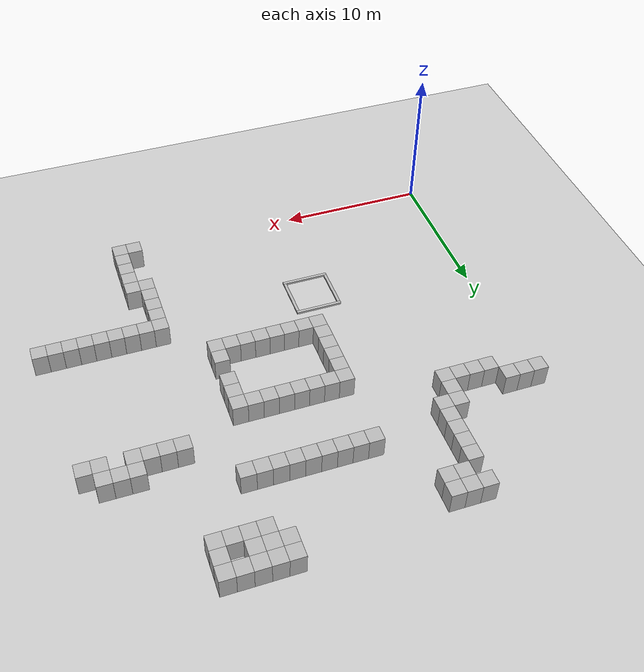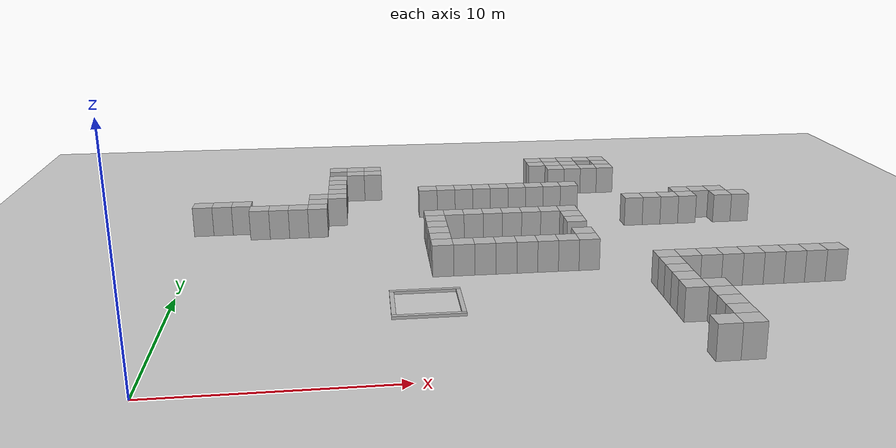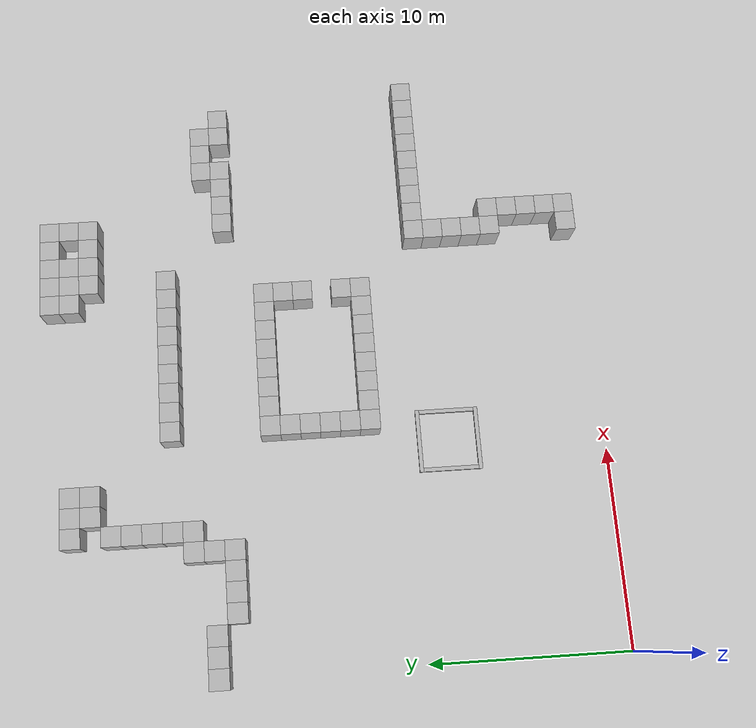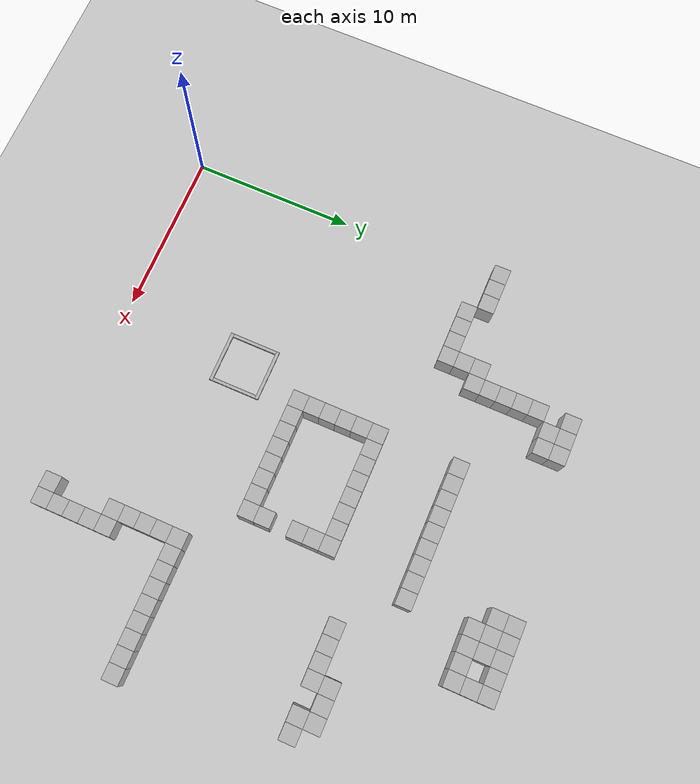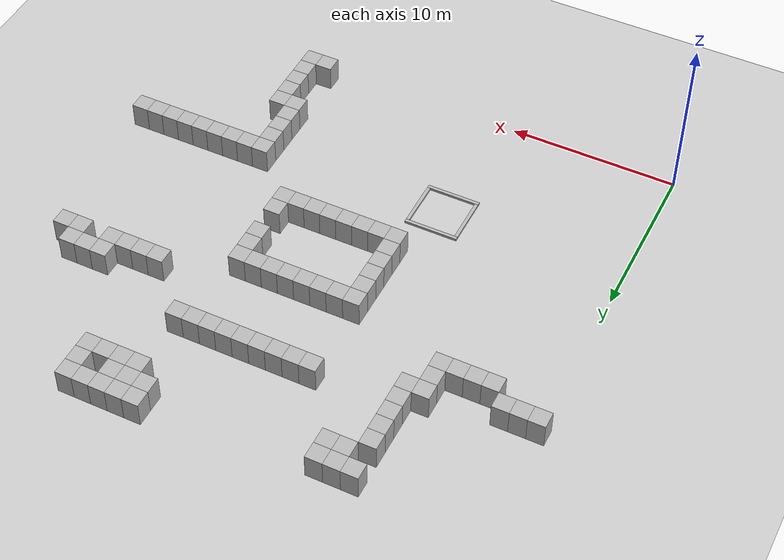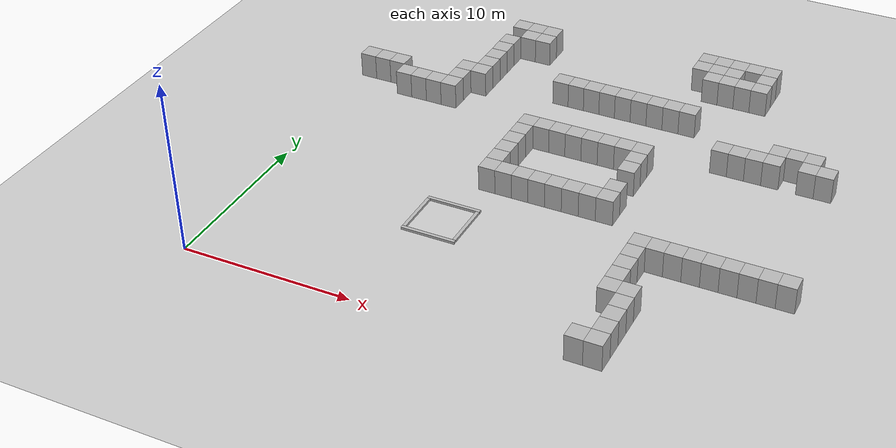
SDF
<?xml version="1.0" ?>
<sdf version="1.4">
  <world name="default">
    <include>
      <uri>model://ground_plane</uri>
    </include>
    <include>
      <uri>model://sun</uri>
    </include>

    <!-- Only one ROS interface plugin is required per world, as any other plugin can connect a Gazebo
         topic to a ROS topic (or vise versa). -->
    <plugin name="ros_interface_plugin" filename="librotors_gazebo_ros_interface_plugin.so"/>
    <plugin name="ros_link_attacher_plugin" filename="libgazebo_ros_link_attacher.so"/>

    <spherical_coordinates>
      <surface_model>EARTH_WGS84</surface_model>
      <latitude_deg>47.3667</latitude_deg>
      <longitude_deg>8.5500</longitude_deg>
      <elevation>500.0</elevation>
      <heading_deg>0</heading_deg>
    </spherical_coordinates>
    <physics type='ode'>
      <ode>
        <solver>
          <type>quick</type>
          <iters>1000</iters>
          <sor>1.3</sor>
        </solver>
        <constraints>
          <cfm>0</cfm>
          <erp>0.2</erp>
          <contact_max_correcting_vel>100</contact_max_correcting_vel>
          <contact_surface_layer>0.001</contact_surface_layer>
        </constraints>
      </ode>
      <max_step_size>0.01</max_step_size>
      <real_time_factor>1</real_time_factor>
      <real_time_update_rate>100</real_time_update_rate>
      <gravity>0 0 -9.8</gravity>
    </physics>

    <model name='box_fornt'>
      <static>1</static>
      <pose frame=''>11 9.5 0 0 0 0</pose>
      <link name='link'>
        <pose frame=''>0 0 0 0 0 0</pose>
        <visual name='visual'>
          <geometry>
            <box>
              <size>3.2 0.2 0.2</size>
            </box>
          </geometry>
        </visual>
        <self_collide>0</self_collide>
        <enable_wind>0</enable_wind>
        <kinematic>0</kinematic>
      </link>
    </model>
    <model name='box_back'>
      <static>1</static>
      <pose frame=''>11 6.5 0 0 0 0</pose>
      <link name='link'>
        <pose frame=''>0 0 0 0 0 0</pose>
        <visual name='visual'>
          <geometry>
            <box>
              <size>3.2 0.2 0.2</size>
            </box>
          </geometry>
        </visual>
        <self_collide>0</self_collide>
        <enable_wind>0</enable_wind>
        <kinematic>0</kinematic>
      </link>
    </model>
    <model name='box_left'>
      <static>1</static>
      <pose frame=''>9.5 8 0 0 0 0</pose>
      <link name='link'>
        <pose frame=''>0 0 0 0 0 0</pose>
        <visual name='visual'>
          <geometry>
            <box>
              <size>0.2 2.8 0.2</size>
            </box>
          </geometry>
        </visual>
        <self_collide>0</self_collide>
        <enable_wind>0</enable_wind>
        <kinematic>0</kinematic>
      </link>
    </model>
    <model name='box_right'>
      <static>1</static>
      <pose frame=''>12.5 8 0 0 0 0</pose>
      <link name='link'>
        <pose frame=''>0 0 0 0 0 0</pose>
        <visual name='visual'>
          <geometry>
            <box>
              <size>0.2 2.8 0.2</size>
            </box>
          </geometry>
        </visual>
        <self_collide>0</self_collide>
        <enable_wind>0</enable_wind>
        <kinematic>0</kinematic>
      </link>
    </model>
    <model name='box_20'>
      <static>1</static>
      <pose frame=''>0 20 0 0 -0 0</pose>
      <link name='link'>
        <pose frame=''>0 0 0 0 -0 0</pose>
        <visual name='visual'>
          <geometry>
            <box>
              <size>1 1 3</size>
            </box>
          </geometry>
        </visual>
        <self_collide>0</self_collide>
        <enable_wind>0</enable_wind>
        <kinematic>0</kinematic>
      </link>
    </model>
    <model name='box_120'>
      <static>1</static>
      <pose frame=''>1 20 0 0 -0 0</pose>
      <link name='link'>
        <pose frame=''>0 0 0 0 -0 0</pose>
        <visual name='visual'>
          <geometry>
            <box>
              <size>1 1 3</size>
            </box>
          </geometry>
        </visual>
        <self_collide>0</self_collide>
        <enable_wind>0</enable_wind>
        <kinematic>0</kinematic>
      </link>
    </model>
    <model name='box_220'>
      <static>1</static>
      <pose frame=''>2 20 0 0 -0 0</pose>
      <link name='link'>
        <pose frame=''>0 0 0 0 -0 0</pose>
        <visual name='visual'>
          <geometry>
            <box>
              <size>1 1 3</size>
            </box>
          </geometry>
        </visual>
        <self_collide>0</self_collide>
        <enable_wind>0</enable_wind>
        <kinematic>0</kinematic>
      </link>
    </model>
    <model name='box_319'>
      <static>1</static>
      <pose frame=''>3 19 0 0 -0 0</pose>
      <link name='link'>
        <pose frame=''>0 0 0 0 -0 0</pose>
        <visual name='visual'>
          <geometry>
            <box>
              <size>1 1 3</size>
            </box>
          </geometry>
        </visual>
        <self_collide>0</self_collide>
        <enable_wind>0</enable_wind>
        <kinematic>0</kinematic>
      </link>
    </model>
    <model name='box_419'>
      <static>1</static>
      <pose frame=''>4 19 0 0 -0 0</pose>
      <link name='link'>
        <pose frame=''>0 0 0 0 -0 0</pose>
        <visual name='visual'>
          <geometry>
            <box>
              <size>1 1 3</size>
            </box>
          </geometry>
        </visual>
        <self_collide>0</self_collide>
        <enable_wind>0</enable_wind>
        <kinematic>0</kinematic>
      </link>
    </model>
    <model name='box_519'>
      <static>1</static>
      <pose frame=''>5 19 0 0 0 0</pose>
      <link name='link'>
        <pose frame=''>0 0 0 0 -0 0</pose>
        <visual name='visual'>
          <geometry>
            <box>
              <size>1 1 3</size>
            </box>
          </geometry>
        </visual>
        <self_collide>0</self_collide>
        <enable_wind>0</enable_wind>
        <kinematic>0</kinematic>
      </link>
    </model>
    <model name='box_619'>
      <static>1</static>
      <pose frame=''>6 19 0 0 -0 0</pose>
      <link name='link'>
        <pose frame=''>0 0 0 0 -0 0</pose>
        <visual name='visual'>
          <geometry>
            <box>
              <size>1 1 3</size>
            </box>
          </geometry>
        </visual>
        <self_collide>0</self_collide>
        <enable_wind>0</enable_wind>
        <kinematic>0</kinematic>
      </link>
    </model>
    <model name='box_620'>
      <static>1</static>
      <pose frame=''>6 20 0 0 -0 0</pose>
      <link name='link'>
        <pose frame=''>0 0 0 0 -0 0</pose>
        <visual name='visual'>
          <geometry>
            <box>
              <size>1 1 3</size>
            </box>
          </geometry>
        </visual>
        <self_collide>0</self_collide>
        <enable_wind>0</enable_wind>
        <kinematic>0</kinematic>
      </link>
    </model>
    <model name='box_621'>
      <static>1</static>
      <pose frame=''>6 21 0 0 -0 0</pose>
      <link name='link'>
        <pose frame=''>0 0 0 0 -0 0</pose>
        <visual name='visual'>
          <geometry>
            <box>
              <size>1 1 3</size>
            </box>
          </geometry>
        </visual>
        <self_collide>0</self_collide>
        <enable_wind>0</enable_wind>
        <kinematic>0</kinematic>
      </link>
    </model>
    <model name='box_721'>
      <static>1</static>
      <pose frame=''>7 21 0 0 -0 0</pose>
      <link name='link'>
        <pose frame=''>0 0 0 0 -0 0</pose>
        <visual name='visual'>
          <geometry>
            <box>
              <size>1 1 3</size>
            </box>
          </geometry>
        </visual>
        <self_collide>0</self_collide>
        <enable_wind>0</enable_wind>
        <kinematic>0</kinematic>
      </link>
    </model>
    <model name='box_722'>
      <static>1</static>
      <pose frame=''>7 22 0 0 -0 0</pose>
      <link name='link'>
        <pose frame=''>0 0 0 0 -0 0</pose>
        <visual name='visual'>
          <geometry>
            <box>
              <size>1 1 3</size>
            </box>
          </geometry>
        </visual>
        <self_collide>0</self_collide>
        <enable_wind>0</enable_wind>
        <kinematic>0</kinematic>
      </link>
    </model>
    <model name='box_723'>
      <static>1</static>
      <pose frame=''>7 23 0 0 -0 0</pose>
      <link name='link'>
        <pose frame=''>0 0 0 0 -0 0</pose>
        <visual name='visual'>
          <geometry>
            <box>
              <size>1 1 3</size>
            </box>
          </geometry>
        </visual>
        <self_collide>0</self_collide>
        <enable_wind>0</enable_wind>
        <kinematic>0</kinematic>
      </link>
    </model>
    <model name='box_724'>
      <static>1</static>
      <pose frame=''>7 24 0 0 -0 0</pose>
      <link name='link'>
        <pose frame=''>0 0 0 0 -0 0</pose>
        <visual name='visual'>
          <geometry>
            <box>
              <size>1 1 3</size>
            </box>
          </geometry>
        </visual>
        <self_collide>0</self_collide>
        <enable_wind>0</enable_wind>
        <kinematic>0</kinematic>
      </link>
    </model>
    <model name='box_725'>
      <static>1</static>
      <pose frame=''>7 25 0 0 -0 0</pose>
      <link name='link'>
        <pose frame=''>0 0 0 0 -0 0</pose>
        <visual name='visual'>
          <geometry>
            <box>
              <size>1 1 3</size>
            </box>
          </geometry>
        </visual>
        <self_collide>0</self_collide>
        <enable_wind>0</enable_wind>
        <kinematic>0</kinematic>
      </link>
    </model>
    <model name='box_727'>
      <static>1</static>
      <pose frame=''>7 27 0 0 -0 0</pose>
      <link name='link'>
        <pose frame=''>0 0 0 0 -0 0</pose>
        <visual name='visual'>
          <geometry>
            <box>
              <size>1 1 3</size>
            </box>
          </geometry>
        </visual>
        <self_collide>0</self_collide>
        <enable_wind>0</enable_wind>
        <kinematic>0</kinematic>
      </link>
    </model>
    <model name='box_826'>
      <static>1</static>
      <pose frame=''>8 26 0 0 -0 0</pose>
      <link name='link'>
        <pose frame=''>0 0 0 0 -0 0</pose>
        <visual name='visual'>
          <geometry>
            <box>
              <size>1 1 3</size>
            </box>
          </geometry>
        </visual>
        <self_collide>0</self_collide>
        <enable_wind>0</enable_wind>
        <kinematic>0</kinematic>
      </link>
    </model>
    <model name='box_827'>
      <static>1</static>
      <pose frame=''>8 27 0 0 -0 0</pose>
      <link name='link'>
        <pose frame=''>0 0 0 0 -0 0</pose>
        <visual name='visual'>
          <geometry>
            <box>
              <size>1 1 3</size>
            </box>
          </geometry>
        </visual>
        <self_collide>0</self_collide>
        <enable_wind>0</enable_wind>
        <kinematic>0</kinematic>
      </link>
    </model>
    <model name='box_926'>
      <static>1</static>
      <pose frame=''>9 26 0 0 -0 0</pose>
      <link name='link'>
        <pose frame=''>0 0 0 0 -0 0</pose>
        <visual name='visual'>
          <geometry>
            <box>
              <size>1 1 3</size>
            </box>
          </geometry>
        </visual>
        <self_collide>0</self_collide>
        <enable_wind>0</enable_wind>
        <kinematic>0</kinematic>
      </link>
    </model>
    <model name='box_927'>
      <static>1</static>
      <pose frame=''>9 27 0 0 -0 0</pose>
      <link name='link'>
        <pose frame=''>0 0 0 0 -0 0</pose>
        <visual name='visual'>
          <geometry>
            <box>
              <size>1 1 3</size>
            </box>
          </geometry>
        </visual>
        <self_collide>0</self_collide>
        <enable_wind>0</enable_wind>
        <kinematic>0</kinematic>
      </link>
    </model>
    <model name='box_1213'>
      <static>1</static>
      <pose frame=''>12 13 0 0 -0 0</pose>
      <link name='link'>
        <pose frame=''>0 0 0 0 -0 0</pose>
        <visual name='visual'>
          <geometry>
            <box>
              <size>1 1 3</size>
            </box>
          </geometry>
        </visual>
        <self_collide>0</self_collide>
        <enable_wind>0</enable_wind>
        <kinematic>0</kinematic>
      </link>
    </model>
    <model name='box_1214'>
      <static>1</static>
      <pose frame=''>12 14 0 0 -0 0</pose>
      <link name='link'>
        <pose frame=''>0 0 0 0 -0 0</pose>
        <visual name='visual'>
          <geometry>
            <box>
              <size>1 1 3</size>
            </box>
          </geometry>
        </visual>
        <self_collide>0</self_collide>
        <enable_wind>0</enable_wind>
        <kinematic>0</kinematic>
      </link>
    </model>
    <model name='box_1215'>
      <static>1</static>
      <pose frame=''>12 15 0 0 -0 0</pose>
      <link name='link'>
        <pose frame=''>0 0 0 0 -0 0</pose>
        <visual name='visual'>
          <geometry>
            <box>
              <size>1 1 3</size>
            </box>
          </geometry>
        </visual>
        <self_collide>0</self_collide>
        <enable_wind>0</enable_wind>
        <kinematic>0</kinematic>
      </link>
    </model>
    <model name='box_1216'>
      <static>1</static>
      <pose frame=''>12 16 0 0 -0 0</pose>
      <link name='link'>
        <pose frame=''>0 0 0 0 -0 0</pose>
        <visual name='visual'>
          <geometry>
            <box>
              <size>1 1 3</size>
            </box>
          </geometry>
        </visual>
        <self_collide>0</self_collide>
        <enable_wind>0</enable_wind>
        <kinematic>0</kinematic>
      </link>
    </model>
    <model name='box_1217'>
      <static>1</static>
      <pose frame=''>12 17 0 0 -0 0</pose>
      <link name='link'>
        <pose frame=''>0 0 0 0 -0 0</pose>
        <visual name='visual'>
          <geometry>
            <box>
              <size>1 1 3</size>
            </box>
          </geometry>
        </visual>
        <self_collide>0</self_collide>
        <enable_wind>0</enable_wind>
        <kinematic>0</kinematic>
      </link>
    </model>
    <model name='box_1222'>
      <static>1</static>
      <pose frame=''>12 22 0 0 -0 0</pose>
      <link name='link'>
        <pose frame=''>0 0 0 0 -0 0</pose>
        <visual name='visual'>
          <geometry>
            <box>
              <size>1 1 3</size>
            </box>
          </geometry>
        </visual>
        <self_collide>0</self_collide>
        <enable_wind>0</enable_wind>
        <kinematic>0</kinematic>
      </link>
    </model>
    <model name='box_1312'>
      <static>1</static>
      <pose frame=''>13 12 0 0 -0 0</pose>
      <link name='link'>
        <pose frame=''>0 0 0 0 -0 0</pose>
        <visual name='visual'>
          <geometry>
            <box>
              <size>1 1 3</size>
            </box>
          </geometry>
        </visual>
        <self_collide>0</self_collide>
        <enable_wind>0</enable_wind>
        <kinematic>0</kinematic>
      </link>
    </model>
    <model name='box_1314'>
      <static>1</static>
      <pose frame=''>12 12 0 0 0 0</pose>
      <link name='link'>
        <pose frame=''>0 0 0 0 -0 0</pose>
        <visual name='visual'>
          <geometry>
            <box>
              <size>1 1 3</size>
            </box>
          </geometry>
        </visual>
        <self_collide>0</self_collide>
        <enable_wind>0</enable_wind>
        <kinematic>0</kinematic>
      </link>
    </model>
    <model name='box_1317'>
      <static>1</static>
      <pose frame=''>13 17 0 0 -0 0</pose>
      <link name='link'>
        <pose frame=''>0 0 0 0 -0 0</pose>
        <visual name='visual'>
          <geometry>
            <box>
              <size>1 1 3</size>
            </box>
          </geometry>
        </visual>
        <self_collide>0</self_collide>
        <enable_wind>0</enable_wind>
        <kinematic>0</kinematic>
      </link>
    </model>
    <model name='box_1322'>
      <static>1</static>
      <pose frame=''>13 22 0 0 -0 0</pose>
      <link name='link'>
        <pose frame=''>0 0 0 0 -0 0</pose>
        <visual name='visual'>
          <geometry>
            <box>
              <size>1 1 3</size>
            </box>
          </geometry>
        </visual>
        <self_collide>0</self_collide>
        <enable_wind>0</enable_wind>
        <kinematic>0</kinematic>
      </link>
    </model>
    <model name='box_1412'>
      <static>1</static>
      <pose frame=''>14 12 0 0 -0 0</pose>
      <link name='link'>
        <pose frame=''>0 0 0 0 -0 0</pose>
        <visual name='visual'>
          <geometry>
            <box>
              <size>1 1 3</size>
            </box>
          </geometry>
        </visual>
        <self_collide>0</self_collide>
        <enable_wind>0</enable_wind>
        <kinematic>0</kinematic>
      </link>
    </model>
    <model name='box_1417'>
      <static>1</static>
      <pose frame=''>14 17 0 0 -0 0</pose>
      <link name='link'>
        <pose frame=''>0 0 0 0 -0 0</pose>
        <visual name='visual'>
          <geometry>
            <box>
              <size>1 1 3</size>
            </box>
          </geometry>
        </visual>
        <self_collide>0</self_collide>
        <enable_wind>0</enable_wind>
        <kinematic>0</kinematic>
      </link>
    </model>
    <model name='box_1422'>
      <static>1</static>
      <pose frame=''>14 22 0 0 -0 0</pose>
      <link name='link'>
        <pose frame=''>0 0 0 0 -0 0</pose>
        <visual name='visual'>
          <geometry>
            <box>
              <size>1 1 3</size>
            </box>
          </geometry>
        </visual>
        <self_collide>0</self_collide>
        <enable_wind>0</enable_wind>
        <kinematic>0</kinematic>
      </link>
    </model>
    <model name='box_1512'>
      <static>1</static>
      <pose frame=''>15 12 0 0 -0 0</pose>
      <link name='link'>
        <pose frame=''>0 0 0 0 -0 0</pose>
        <visual name='visual'>
          <geometry>
            <box>
              <size>1 1 3</size>
            </box>
          </geometry>
        </visual>
        <self_collide>0</self_collide>
        <enable_wind>0</enable_wind>
        <kinematic>0</kinematic>
      </link>
    </model>
    <model name='box_1517'>
      <static>1</static>
      <pose frame=''>15 17 0 0 -0 0</pose>
      <link name='link'>
        <pose frame=''>0 0 0 0 -0 0</pose>
        <visual name='visual'>
          <geometry>
            <box>
              <size>1 1 3</size>
            </box>
          </geometry>
        </visual>
        <self_collide>0</self_collide>
        <enable_wind>0</enable_wind>
        <kinematic>0</kinematic>
      </link>
    </model>
    <model name='box_1522'>
      <static>1</static>
      <pose frame=''>15 22 0 0 -0 0</pose>
      <link name='link'>
        <pose frame=''>0 0 0 0 -0 0</pose>
        <visual name='visual'>
          <geometry>
            <box>
              <size>1 1 3</size>
            </box>
          </geometry>
        </visual>
        <self_collide>0</self_collide>
        <enable_wind>0</enable_wind>
        <kinematic>0</kinematic>
      </link>
    </model>
    <model name='box_1612'>
      <static>1</static>
      <pose frame=''>16 12 0 0 -0 0</pose>
      <link name='link'>
        <pose frame=''>0 0 0 0 -0 0</pose>
        <visual name='visual'>
          <geometry>
            <box>
              <size>1 1 3</size>
            </box>
          </geometry>
        </visual>
        <self_collide>0</self_collide>
        <enable_wind>0</enable_wind>
        <kinematic>0</kinematic>
      </link>
    </model>
    <model name='box_1617'>
      <static>1</static>
      <pose frame=''>16 17 0 0 -0 0</pose>
      <link name='link'>
        <pose frame=''>0 0 0 0 -0 0</pose>
        <visual name='visual'>
          <geometry>
            <box>
              <size>1 1 3</size>
            </box>
          </geometry>
        </visual>
        <self_collide>0</self_collide>
        <enable_wind>0</enable_wind>
        <kinematic>0</kinematic>
      </link>
    </model>
    <model name='box_1622'>
      <static>1</static>
      <pose frame=''>16 22 0 0 -0 0</pose>
      <link name='link'>
        <pose frame=''>0 0 0 0 -0 0</pose>
        <visual name='visual'>
          <geometry>
            <box>
              <size>1 1 3</size>
            </box>
          </geometry>
        </visual>
        <self_collide>0</self_collide>
        <enable_wind>0</enable_wind>
        <kinematic>0</kinematic>
      </link>
    </model>
    <model name='box_1712'>
      <static>1</static>
      <pose frame=''>17 12 0 0 -0 0</pose>
      <link name='link'>
        <pose frame=''>0 0 0 0 -0 0</pose>
        <visual name='visual'>
          <geometry>
            <box>
              <size>1 1 3</size>
            </box>
          </geometry>
        </visual>
        <self_collide>0</self_collide>
        <enable_wind>0</enable_wind>
        <kinematic>0</kinematic>
      </link>
    </model>
    <model name='box_1717'>
      <static>1</static>
      <pose frame=''>17 17 0 0 -0 0</pose>
      <link name='link'>
        <pose frame=''>0 0 0 0 -0 0</pose>
        <visual name='visual'>
          <geometry>
            <box>
              <size>1 1 3</size>
            </box>
          </geometry>
        </visual>
        <self_collide>0</self_collide>
        <enable_wind>0</enable_wind>
        <kinematic>0</kinematic>
      </link>
    </model>
    <model name='box_1722'>
      <static>1</static>
      <pose frame=''>17 22 0 0 -0 0</pose>
      <link name='link'>
        <pose frame=''>0 0 0 0 -0 0</pose>
        <visual name='visual'>
          <geometry>
            <box>
              <size>1 1 3</size>
            </box>
          </geometry>
        </visual>
        <self_collide>0</self_collide>
        <enable_wind>0</enable_wind>
        <kinematic>0</kinematic>
      </link>
    </model>
    <model name='box_1812'>
      <static>1</static>
      <pose frame=''>18 12 0 0 -0 0</pose>
      <link name='link'>
        <pose frame=''>0 0 0 0 -0 0</pose>
        <visual name='visual'>
          <geometry>
            <box>
              <size>1 1 3</size>
            </box>
          </geometry>
        </visual>
        <self_collide>0</self_collide>
        <enable_wind>0</enable_wind>
        <kinematic>0</kinematic>
      </link>
    </model>
    <model name='box_1817'>
      <static>1</static>
      <pose frame=''>18 17 0 0 -0 0</pose>
      <link name='link'>
        <pose frame=''>0 0 0 0 -0 0</pose>
        <visual name='visual'>
          <geometry>
            <box>
              <size>1 1 3</size>
            </box>
          </geometry>
        </visual>
        <self_collide>0</self_collide>
        <enable_wind>0</enable_wind>
        <kinematic>0</kinematic>
      </link>
    </model>
    <model name='box_1822'>
      <static>1</static>
      <pose frame=''>18 22 0 0 -0 0</pose>
      <link name='link'>
        <pose frame=''>0 0 0 0 -0 0</pose>
        <visual name='visual'>
          <geometry>
            <box>
              <size>1 1 3</size>
            </box>
          </geometry>
        </visual>
        <self_collide>0</self_collide>
        <enable_wind>0</enable_wind>
        <kinematic>0</kinematic>
      </link>
    </model>
    <model name='box_1912'>
      <static>1</static>
      <pose frame=''>19 12 0 0 -0 0</pose>
      <link name='link'>
        <pose frame=''>0 0 0 0 -0 0</pose>
        <visual name='visual'>
          <geometry>
            <box>
              <size>1 1 3</size>
            </box>
          </geometry>
        </visual>
        <self_collide>0</self_collide>
        <enable_wind>0</enable_wind>
        <kinematic>0</kinematic>
      </link>
    </model>
    <model name='box_1913'>
      <static>1</static>
      <pose frame=''>19 13 0 0 -0 0</pose>
      <link name='link'>
        <pose frame=''>0 0 0 0 -0 0</pose>
        <visual name='visual'>
          <geometry>
            <box>
              <size>1 1 3</size>
            </box>
          </geometry>
        </visual>
        <self_collide>0</self_collide>
        <enable_wind>0</enable_wind>
        <kinematic>0</kinematic>
      </link>
    </model>
    <model name='box_1915'>
      <static>1</static>
      <pose frame=''>19 15 0 0 -0 0</pose>
      <link name='link'>
        <pose frame=''>0 0 0 0 -0 0</pose>
        <visual name='visual'>
          <geometry>
            <box>
              <size>1 1 3</size>
            </box>
          </geometry>
        </visual>
        <self_collide>0</self_collide>
        <enable_wind>0</enable_wind>
        <kinematic>0</kinematic>
      </link>
    </model>
    <model name='box_1916'>
      <static>1</static>
      <pose frame=''>19 16 0 0 -0 0</pose>
      <link name='link'>
        <pose frame=''>0 0 0 0 -0 0</pose>
        <visual name='visual'>
          <geometry>
            <box>
              <size>1 1 3</size>
            </box>
          </geometry>
        </visual>
        <self_collide>0</self_collide>
        <enable_wind>0</enable_wind>
        <kinematic>0</kinematic>
      </link>
    </model>
    <model name='box_1917'>
      <static>1</static>
      <pose frame=''>19 17 0 0 -0 0</pose>
      <link name='link'>
        <pose frame=''>0 0 0 0 -0 0</pose>
        <visual name='visual'>
          <geometry>
            <box>
              <size>1 1 3</size>
            </box>
          </geometry>
        </visual>
        <self_collide>0</self_collide>
        <enable_wind>0</enable_wind>
        <kinematic>0</kinematic>
      </link>
    </model>
    <model name='box_1922'>
      <static>1</static>
      <pose frame=''>19 22 0 0 -0 0</pose>
      <link name='link'>
        <pose frame=''>0 0 0 0 -0 0</pose>
        <visual name='visual'>
          <geometry>
            <box>
              <size>1 1 3</size>
            </box>
          </geometry>
        </visual>
        <self_collide>0</self_collide>
        <enable_wind>0</enable_wind>
        <kinematic>0</kinematic>
      </link>
    </model>
    <model name='box_1927'>
      <static>1</static>
      <pose frame=''>19 27 0 0 -0 0</pose>
      <link name='link'>
        <pose frame=''>0 0 0 0 -0 0</pose>
        <visual name='visual'>
          <geometry>
            <box>
              <size>1 1 3</size>
            </box>
          </geometry>
        </visual>
        <self_collide>0</self_collide>
        <enable_wind>0</enable_wind>
        <kinematic>0</kinematic>
      </link>
    </model>
    <model name='box_1928'>
      <static>1</static>
      <pose frame=''>19 28 0 0 -0 0</pose>
      <link name='link'>
        <pose frame=''>0 0 0 0 -0 0</pose>
        <visual name='visual'>
          <geometry>
            <box>
              <size>1 1 3</size>
            </box>
          </geometry>
        </visual>
        <self_collide>0</self_collide>
        <enable_wind>0</enable_wind>
        <kinematic>0</kinematic>
      </link>
    </model>
    <model name='box_2022'>
      <static>1</static>
      <pose frame=''>20 22 0 0 -0 0</pose>
      <link name='link'>
        <pose frame=''>0 0 0 0 -0 0</pose>
        <visual name='visual'>
          <geometry>
            <box>
              <size>1 1 3</size>
            </box>
          </geometry>
        </visual>
        <self_collide>0</self_collide>
        <enable_wind>0</enable_wind>
        <kinematic>0</kinematic>
      </link>
    </model>
    <model name='box_2026'>
      <static>1</static>
      <pose frame=''>20 26 0 0 -0 0</pose>
      <link name='link'>
        <pose frame=''>0 0 0 0 -0 0</pose>
        <visual name='visual'>
          <geometry>
            <box>
              <size>1 1 3</size>
            </box>
          </geometry>
        </visual>
        <self_collide>0</self_collide>
        <enable_wind>0</enable_wind>
        <kinematic>0</kinematic>
      </link>
    </model>
    <model name='box_2027'>
      <static>1</static>
      <pose frame=''>20 27 0 0 -0 0</pose>
      <link name='link'>
        <pose frame=''>0 0 0 0 -0 0</pose>
        <visual name='visual'>
          <geometry>
            <box>
              <size>1 1 3</size>
            </box>
          </geometry>
        </visual>
        <self_collide>0</self_collide>
        <enable_wind>0</enable_wind>
        <kinematic>0</kinematic>
      </link>
    </model>
    <model name='box_2028'>
      <static>1</static>
      <pose frame=''>20 28 0 0 -0 0</pose>
      <link name='link'>
        <pose frame=''>0 0 0 0 -0 0</pose>
        <visual name='visual'>
          <geometry>
            <box>
              <size>1 1 3</size>
            </box>
          </geometry>
        </visual>
        <self_collide>0</self_collide>
        <enable_wind>0</enable_wind>
        <kinematic>0</kinematic>
      </link>
    </model>
    <model name='box_2126'>
      <static>1</static>
      <pose frame=''>21 26 0 0 -0 0</pose>
      <link name='link'>
        <pose frame=''>0 0 0 0 -0 0</pose>
        <visual name='visual'>
          <geometry>
            <box>
              <size>1 1 3</size>
            </box>
          </geometry>
        </visual>
        <self_collide>0</self_collide>
        <enable_wind>0</enable_wind>
        <kinematic>0</kinematic>
      </link>
    </model>
    <model name='box_2127'>
      <static>1</static>
      <pose frame=''>21 27 0 0 -0 0</pose>
      <link name='link'>
        <pose frame=''>0 0 0 0 -0 0</pose>
        <visual name='visual'>
          <geometry>
            <box>
              <size>1 1 3</size>
            </box>
          </geometry>
        </visual>
        <self_collide>0</self_collide>
        <enable_wind>0</enable_wind>
        <kinematic>0</kinematic>
      </link>
    </model>
    <model name='box_2128'>
      <static>1</static>
      <pose frame=''>21 28 0 0 -0 0</pose>
      <link name='link'>
        <pose frame=''>0 0 0 0 -0 0</pose>
        <visual name='visual'>
          <geometry>
            <box>
              <size>1 1 3</size>
            </box>
          </geometry>
        </visual>
        <self_collide>0</self_collide>
        <enable_wind>0</enable_wind>
        <kinematic>0</kinematic>
      </link>
    </model>
    <model name='box_2201'>
      <static>1</static>
      <pose frame=''>22 1 0 0 -0 0</pose>
      <link name='link'>
        <pose frame=''>0 0 0 0 -0 0</pose>
        <visual name='visual'>
          <geometry>
            <box>
              <size>1 1 3</size>
            </box>
          </geometry>
        </visual>
        <self_collide>0</self_collide>
        <enable_wind>0</enable_wind>
        <kinematic>0</kinematic>
      </link>
    </model>
    <model name='box_2205'>
      <static>1</static>
      <pose frame=''>22 5 0 0 -0 0</pose>
      <link name='link'>
        <pose frame=''>0 0 0 0 -0 0</pose>
        <visual name='visual'>
          <geometry>
            <box>
              <size>1 1 3</size>
            </box>
          </geometry>
        </visual>
        <self_collide>0</self_collide>
        <enable_wind>0</enable_wind>
        <kinematic>0</kinematic>
      </link>
    </model>
    <model name='box_2206'>
      <static>1</static>
      <pose frame=''>22 6 0 0 -0 0</pose>
      <link name='link'>
        <pose frame=''>0 0 0 0 -0 0</pose>
        <visual name='visual'>
          <geometry>
            <box>
              <size>1 1 3</size>
            </box>
          </geometry>
        </visual>
        <self_collide>0</self_collide>
        <enable_wind>0</enable_wind>
        <kinematic>0</kinematic>
      </link>
    </model>
    <model name='box_2207'>
      <static>1</static>
      <pose frame=''>22 7 0 0 -0 0</pose>
      <link name='link'>
        <pose frame=''>0 0 0 0 -0 0</pose>
        <visual name='visual'>
          <geometry>
            <box>
              <size>1 1 3</size>
            </box>
          </geometry>
        </visual>
        <self_collide>0</self_collide>
        <enable_wind>0</enable_wind>
        <kinematic>0</kinematic>
      </link>
    </model>
    <model name='box_2208'>
      <static>1</static>
      <pose frame=''>22 8 0 0 -0 0</pose>
      <link name='link'>
        <pose frame=''>0 0 0 0 -0 0</pose>
        <visual name='visual'>
          <geometry>
            <box>
              <size>1 1 3</size>
            </box>
          </geometry>
        </visual>
        <self_collide>0</self_collide>
        <enable_wind>0</enable_wind>
        <kinematic>0</kinematic>
      </link>
    </model>
    <model name='box_2209'>
      <static>1</static>
      <pose frame=''>22 9 0 0 -0 0</pose>
      <link name='link'>
        <pose frame=''>0 0 0 0 -0 0</pose>
        <visual name='visual'>
          <geometry>
            <box>
              <size>1 1 3</size>
            </box>
          </geometry>
        </visual>
        <self_collide>0</self_collide>
        <enable_wind>0</enable_wind>
        <kinematic>0</kinematic>
      </link>
    </model>
    <model name='box_2226'>
      <static>1</static>
      <pose frame=''>22 26 0 0 -0 0</pose>
      <link name='link'>
        <pose frame=''>0 0 0 0 -0 0</pose>
        <visual name='visual'>
          <geometry>
            <box>
              <size>1 1 3</size>
            </box>
          </geometry>
        </visual>
        <self_collide>0</self_collide>
        <enable_wind>0</enable_wind>
        <kinematic>0</kinematic>
      </link>
    </model>
    <model name='box_2228'>
      <static>1</static>
      <pose frame=''>22 28 0 0 -0 0</pose>
      <link name='link'>
        <pose frame=''>0 0 0 0 -0 0</pose>
        <visual name='visual'>
          <geometry>
            <box>
              <size>1 1 3</size>
            </box>
          </geometry>
        </visual>
        <self_collide>0</self_collide>
        <enable_wind>0</enable_wind>
        <kinematic>0</kinematic>
      </link>
    </model>
    <model name='box_2301'>
      <static>1</static>
      <pose frame=''>23 1 0 0 -0 0</pose>
      <link name='link'>
        <pose frame=''>0 0 0 0 -0 0</pose>
        <visual name='visual'>
          <geometry>
            <box>
              <size>1 1 3</size>
            </box>
          </geometry>
        </visual>
        <self_collide>0</self_collide>
        <enable_wind>0</enable_wind>
        <kinematic>0</kinematic>
      </link>
    </model>
    <model name='box_2302'>
      <static>1</static>
      <pose frame=''>23 2 0 0 -0 0</pose>
      <link name='link'>
        <pose frame=''>0 0 0 0 -0 0</pose>
        <visual name='visual'>
          <geometry>
            <box>
              <size>1 1 3</size>
            </box>
          </geometry>
        </visual>
        <self_collide>0</self_collide>
        <enable_wind>0</enable_wind>
        <kinematic>0</kinematic>
      </link>
    </model>
    <model name='box_2303'>
      <static>1</static>
      <pose frame=''>23 3 0 0 -0 0</pose>
      <link name='link'>
        <pose frame=''>0 0 0 0 -0 0</pose>
        <visual name='visual'>
          <geometry>
            <box>
              <size>1 1 3</size>
            </box>
          </geometry>
        </visual>
        <self_collide>0</self_collide>
        <enable_wind>0</enable_wind>
        <kinematic>0</kinematic>
      </link>
    </model>
    <model name='box_2304'>
      <static>1</static>
      <pose frame=''>23 4 0 0 -0 0</pose>
      <link name='link'>
        <pose frame=''>0 0 0 0 -0 0</pose>
        <visual name='visual'>
          <geometry>
            <box>
              <size>1 1 3</size>
            </box>
          </geometry>
        </visual>
        <self_collide>0</self_collide>
        <enable_wind>0</enable_wind>
        <kinematic>0</kinematic>
      </link>
    </model>
    <model name='box_2305'>
      <static>1</static>
      <pose frame=''>23 5 0 0 -0 0</pose>
      <link name='link'>
        <pose frame=''>0 0 0 0 -0 0</pose>
        <visual name='visual'>
          <geometry>
            <box>
              <size>1 1 3</size>
            </box>
          </geometry>
        </visual>
        <self_collide>0</self_collide>
        <enable_wind>0</enable_wind>
        <kinematic>0</kinematic>
      </link>
    </model>
    <model name='box_2309'>
      <static>1</static>
      <pose frame=''>23 9 0 0 -0 0</pose>
      <link name='link'>
        <pose frame=''>0 0 0 0 -0 0</pose>
        <visual name='visual'>
          <geometry>
            <box>
              <size>1 1 3</size>
            </box>
          </geometry>
        </visual>
        <self_collide>0</self_collide>
        <enable_wind>0</enable_wind>
        <kinematic>0</kinematic>
      </link>
    </model>
    <model name='box_2319'>
      <static>1</static>
      <pose frame=''>23 19 0 0 -0 0</pose>
      <link name='link'>
        <pose frame=''>0 0 0 0 -0 0</pose>
        <visual name='visual'>
          <geometry>
            <box>
              <size>1 1 3</size>
            </box>
          </geometry>
        </visual>
        <self_collide>0</self_collide>
        <enable_wind>0</enable_wind>
        <kinematic>0</kinematic>
      </link>
    </model>
    <model name='box_2326'>
      <static>1</static>
      <pose frame=''>23 26 0 0 -0 0</pose>
      <link name='link'>
        <pose frame=''>0 0 0 0 -0 0</pose>
        <visual name='visual'>
          <geometry>
            <box>
              <size>1 1 3</size>
            </box>
          </geometry>
        </visual>
        <self_collide>0</self_collide>
        <enable_wind>0</enable_wind>
        <kinematic>0</kinematic>
      </link>
    </model>
    <model name='box_2327'>
      <static>1</static>
      <pose frame=''>23 27 0 0 -0 0</pose>
      <link name='link'>
        <pose frame=''>0 0 0 0 -0 0</pose>
        <visual name='visual'>
          <geometry>
            <box>
              <size>1 1 3</size>
            </box>
          </geometry>
        </visual>
        <self_collide>0</self_collide>
        <enable_wind>0</enable_wind>
        <kinematic>0</kinematic>
      </link>
    </model>
    <model name='box_2328'>
      <static>1</static>
      <pose frame=''>23 28 0 0 -0 0</pose>
      <link name='link'>
        <pose frame=''>0 0 0 0 -0 0</pose>
        <visual name='visual'>
          <geometry>
            <box>
              <size>1 1 3</size>
            </box>
          </geometry>
        </visual>
        <self_collide>0</self_collide>
        <enable_wind>0</enable_wind>
        <kinematic>0</kinematic>
      </link>
    </model>
    <model name='box_2409'>
      <static>1</static>
      <pose frame=''>24 9 0 0 -0 0</pose>
      <link name='link'>
        <pose frame=''>0 0 0 0 -0 0</pose>
        <visual name='visual'>
          <geometry>
            <box>
              <size>1 1 3</size>
            </box>
          </geometry>
        </visual>
        <self_collide>0</self_collide>
        <enable_wind>0</enable_wind>
        <kinematic>0</kinematic>
      </link>
    </model>
    <model name='box_2419'>
      <static>1</static>
      <pose frame=''>24 19 0 0 -0 0</pose>
      <link name='link'>
        <pose frame=''>0 0 0 0 -0 0</pose>
        <visual name='visual'>
          <geometry>
            <box>
              <size>1 1 3</size>
            </box>
          </geometry>
        </visual>
        <self_collide>0</self_collide>
        <enable_wind>0</enable_wind>
        <kinematic>0</kinematic>
      </link>
    </model>
    <model name='box_2509'>
      <static>1</static>
      <pose frame=''>25 9 0 0 -0 0</pose>
      <link name='link'>
        <pose frame=''>0 0 0 0 -0 0</pose>
        <visual name='visual'>
          <geometry>
            <box>
              <size>1 1 3</size>
            </box>
          </geometry>
        </visual>
        <self_collide>0</self_collide>
        <enable_wind>0</enable_wind>
        <kinematic>0</kinematic>
      </link>
    </model>
    <model name='box_2519'>
      <static>1</static>
      <pose frame=''>25 19 0 0 -0 0</pose>
      <link name='link'>
        <pose frame=''>0 0 0 0 -0 0</pose>
        <visual name='visual'>
          <geometry>
            <box>
              <size>1 1 3</size>
            </box>
          </geometry>
        </visual>
        <self_collide>0</self_collide>
        <enable_wind>0</enable_wind>
        <kinematic>0</kinematic>
      </link>
    </model>
    <model name='box_2609'>
      <static>1</static>
      <pose frame=''>26 9 0 0 -0 0</pose>
      <link name='link'>
        <pose frame=''>0 0 0 0 -0 0</pose>
        <visual name='visual'>
          <geometry>
            <box>
              <size>1 1 3</size>
            </box>
          </geometry>
        </visual>
        <self_collide>0</self_collide>
        <enable_wind>0</enable_wind>
        <kinematic>0</kinematic>
      </link>
    </model>
    <model name='box_2619'>
      <static>1</static>
      <pose frame=''>26 19 0 0 -0 0</pose>
      <link name='link'>
        <pose frame=''>0 0 0 0 -0 0</pose>
        <visual name='visual'>
          <geometry>
            <box>
              <size>1 1 3</size>
            </box>
          </geometry>
        </visual>
        <self_collide>0</self_collide>
        <enable_wind>0</enable_wind>
        <kinematic>0</kinematic>
      </link>
    </model>
    <model name='box_2620'>
      <static>1</static>
      <pose frame=''>26 20 0 0 -0 0</pose>
      <link name='link'>
        <pose frame=''>0 0 0 0 -0 0</pose>
        <visual name='visual'>
          <geometry>
            <box>
              <size>1 1 3</size>
            </box>
          </geometry>
        </visual>
        <self_collide>0</self_collide>
        <enable_wind>0</enable_wind>
        <kinematic>0</kinematic>
      </link>
    </model>
    <model name='box_2709'>
      <static>1</static>
      <pose frame=''>27 9 0 0 -0 0</pose>
      <link name='link'>
        <pose frame=''>0 0 0 0 -0 0</pose>
        <visual name='visual'>
          <geometry>
            <box>
              <size>1 1 3</size>
            </box>
          </geometry>
        </visual>
        <self_collide>0</self_collide>
        <enable_wind>0</enable_wind>
        <kinematic>0</kinematic>
      </link>
    </model>
    <model name='box_2720'>
      <static>1</static>
      <pose frame=''>27 20 0 0 -0 0</pose>
      <link name='link'>
        <pose frame=''>0 0 0 0 -0 0</pose>
        <visual name='visual'>
          <geometry>
            <box>
              <size>1 1 3</size>
            </box>
          </geometry>
        </visual>
        <self_collide>0</self_collide>
        <enable_wind>0</enable_wind>
        <kinematic>0</kinematic>
      </link>
    </model>
    <model name='box_2809'>
      <static>1</static>
      <pose frame=''>28 9 0 0 -0 0</pose>
      <link name='link'>
        <pose frame=''>0 0 0 0 -0 0</pose>
        <visual name='visual'>
          <geometry>
            <box>
              <size>1 1 3</size>
            </box>
          </geometry>
        </visual>
        <self_collide>0</self_collide>
        <enable_wind>0</enable_wind>
        <kinematic>0</kinematic>
      </link>
    </model>
    <model name='box_2819'>
      <static>1</static>
      <pose frame=''>28 19 0 0 -0 0</pose>
      <link name='link'>
        <pose frame=''>0 0 0 0 -0 0</pose>
        <visual name='visual'>
          <geometry>
            <box>
              <size>1 1 3</size>
            </box>
          </geometry>
        </visual>
        <self_collide>0</self_collide>
        <enable_wind>0</enable_wind>
        <kinematic>0</kinematic>
      </link>
    </model>
    <model name='box_2820'>
      <static>1</static>
      <pose frame=''>28 20 0 0 -0 0</pose>
      <link name='link'>
        <pose frame=''>0 0 0 0 -0 0</pose>
        <visual name='visual'>
          <geometry>
            <box>
              <size>1 1 3</size>
            </box>
          </geometry>
        </visual>
        <self_collide>0</self_collide>
        <enable_wind>0</enable_wind>
        <kinematic>0</kinematic>
      </link>
    </model>
    <model name='box_2909'>
      <static>1</static>
      <pose frame=''>29 9 0 0 -0 0</pose>
      <link name='link'>
        <pose frame=''>0 0 0 0 -0 0</pose>
        <visual name='visual'>
          <geometry>
            <box>
              <size>1 1 3</size>
            </box>
          </geometry>
        </visual>
        <self_collide>0</self_collide>
        <enable_wind>0</enable_wind>
        <kinematic>0</kinematic>
      </link>
    </model>
    <model name='box_2919'>
      <static>1</static>
      <pose frame=''>29 19 0 0 -0 0</pose>
      <link name='link'>
        <pose frame=''>0 0 0 0 -0 0</pose>
        <visual name='visual'>
          <geometry>
            <box>
              <size>1 1 3</size>
            </box>
          </geometry>
        </visual>
        <self_collide>0</self_collide>
        <enable_wind>0</enable_wind>
        <kinematic>0</kinematic>
      </link>
    </model>
    <model name='box_3009'>
      <static>1</static>
      <pose frame=''>30 9 0 0 -0 0</pose>
      <link name='link'>
        <pose frame=''>0 0 0 0 -0 0</pose>
        <visual name='visual'>
          <geometry>
            <box>
              <size>1 1 3</size>
            </box>
          </geometry>
        </visual>
        <self_collide>0</self_collide>
        <enable_wind>0</enable_wind>
        <kinematic>0</kinematic>
      </link>
    </model>

    </world>
</sdf>
